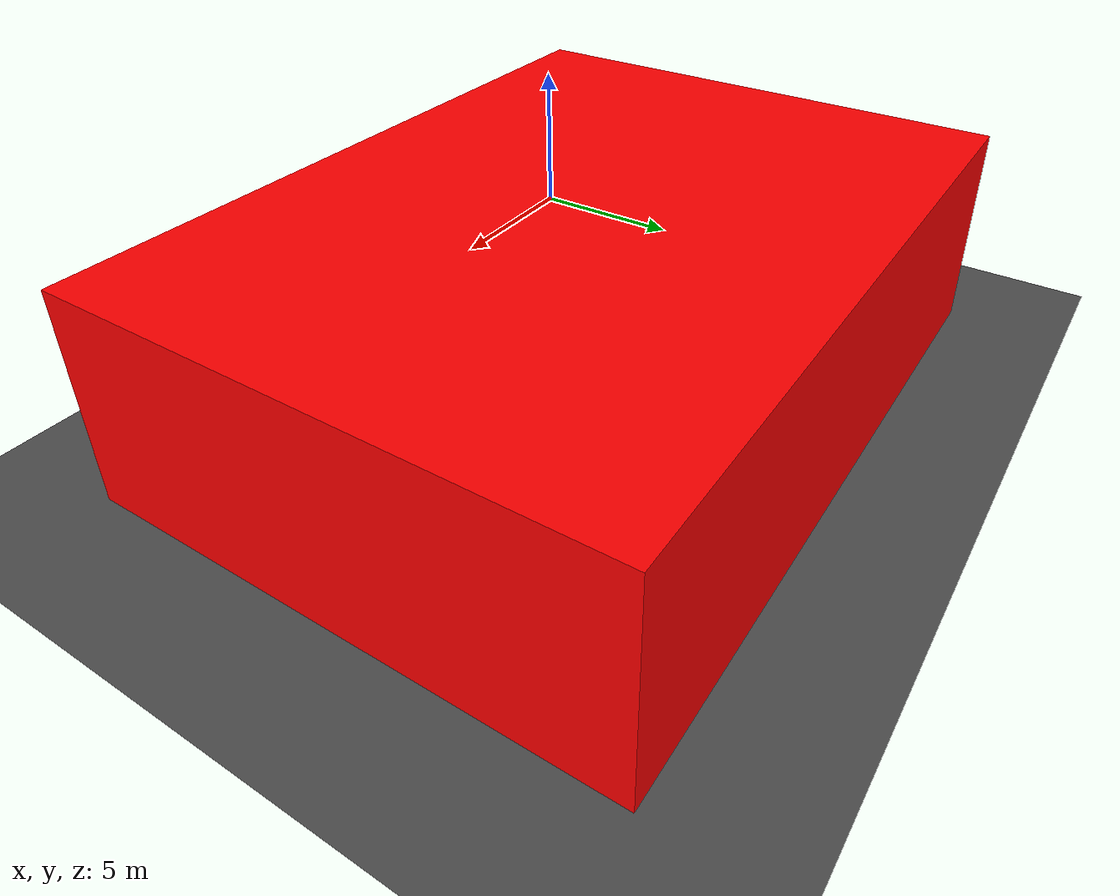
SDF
<sdf version='1.7'>
  <world name='default'>
    <!-- 极简地面（无材质依赖） -->
    <model name='ground_plane'>
      <static>1</static>
      <link name='link'>
        <collision name='collision'>
          <geometry><plane><normal>0 0 1</normal><size>100 100</size></plane></geometry>
        </collision>
        <visual name='visual'>
          <geometry><plane><normal>0 0 1</normal><size>100 100</size></plane></geometry>
          <material>
            <ambient>0.3 0.3 0.3 1</ambient>
            <diffuse>0.3 0.3 0.3 1</diffuse>
          </material>
        </visual>
      </link>
    </model>

    <!-- 核心：unit_box（贴地+Z轴翻倍+XY正方向移动） -->
    <model name='unit_box'>
      <static>true</static> <!-- 保持固定 -->
      <!-- 关键修改：Z坐标=3米（Z尺寸6米的一半），底部刚好贴地 -->
      <pose>10 8 3 0 0 0</pose>
      <link name='link'>
        <inertial>
          <mass>1</mass>
          <inertia><ixx>1</ixx><iyy>1</iyy><izz>1</izz><ixy>0</ixy><ixz>0</ixz><iyz>0</iyz></inertia>
        </inertial>
        <!-- Z轴尺寸6米（延伸一倍），XY=20×15米 -->
        <collision name='collision'>
          <geometry><box><size>20 15 6</size></box></geometry>
        </collision>
        <visual name='visual'>
          <geometry><box><size>20 15 6</size></box></geometry>
          <material>
            <ambient>1 0 0 1</ambient> <!-- 醒目红色 -->
            <diffuse>1 0 0 1</diffuse>
            <specular>0.5 0.5 0.5 1</specular>
          </material>
        </visual>
      </link>
    </model>

    <!-- 物理配置 -->
    <physics type='ode'>
      <real_time_update_rate>400</real_time_update_rate>
      <max_step_size>0.0025</max_step_size>
      <ode>
        <solver>
          <type>quick</type>
          <iters>20</iters>
          <sor>1.0</sor>
        </solver>
      </ode>
    </physics>

    <!-- 强光源（无阴影遮挡） -->
    <light name='sun' type='directional'>
      <pose>0 0 50 0 0 0</pose>
      <diffuse>1 1 1 1</diffuse>
      <specular>1 1 1 1</specular>
      <direction>0 0 -1</direction>
      <cast_shadows>0</cast_shadows>
    </light>

    <!-- 相机对准贴地后的模型 -->
    <gui fullscreen='0'>
      <camera name='user_camera'>
        <pose>35 -12 19 0 0.4 0.785</pose>
        <view_controller>orbit</view_controller>
        <projection_type>perspective</projection_type>
        <clip>
          <near>0.1</near>
          <far>1000</far>
        </clip>
      </camera>
    </gui>

    <!-- 高亮度环境 -->
    <scene>
      <ambient>0.6 0.6 0.6 1</ambient>
      <background>0.8 0.8 0.8 1</background>
    </scene>

    <gravity>0 0 -9.8</gravity>
  </world>
</sdf>
